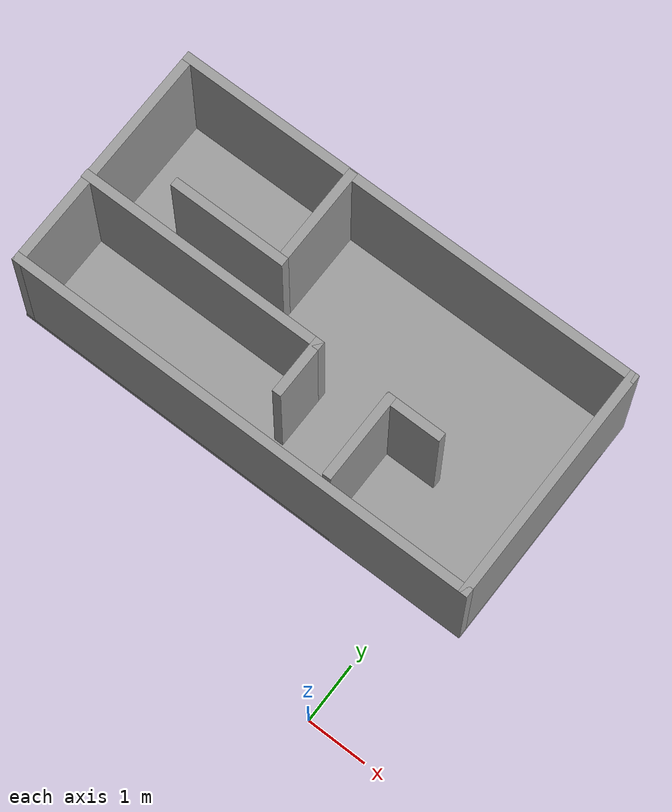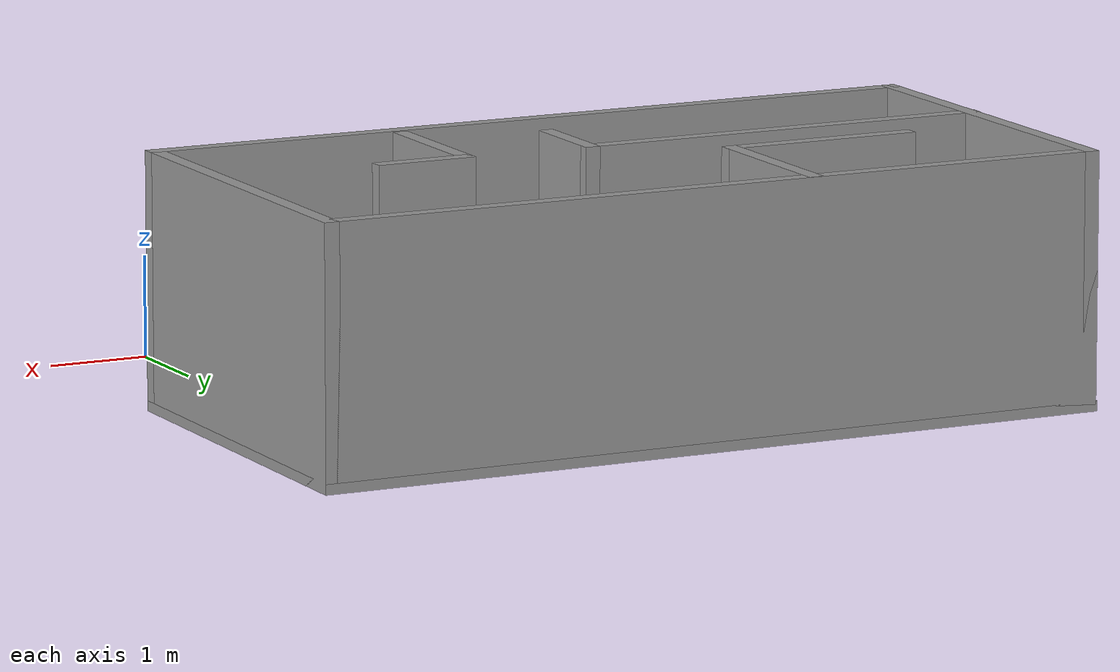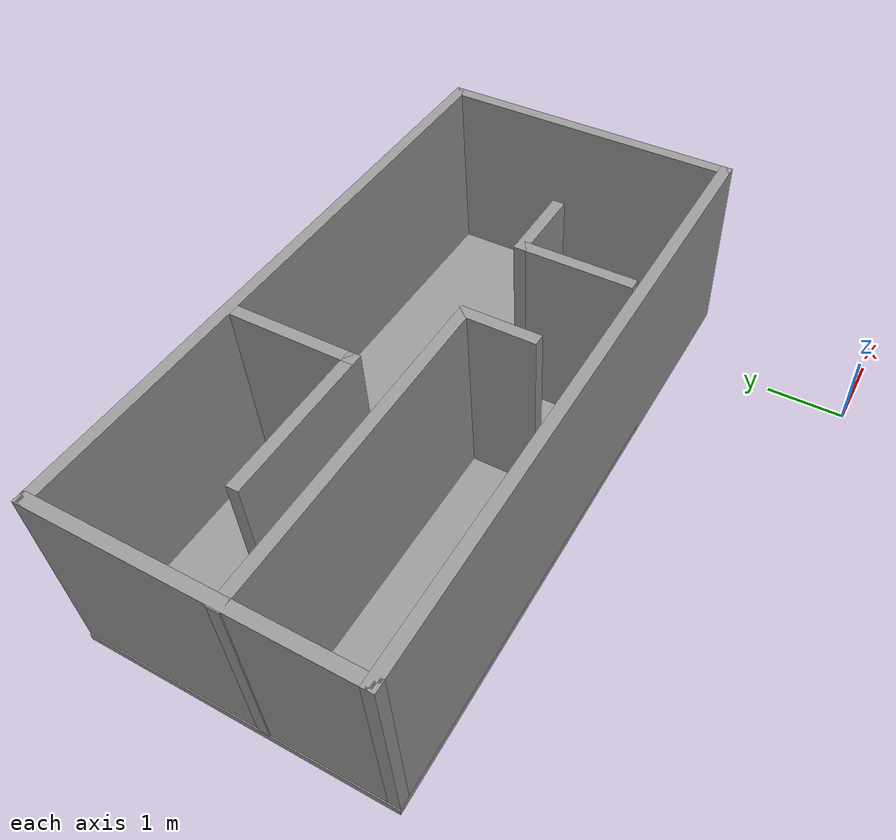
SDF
<?xml version='1.0'?>
<sdf version='1.7'>
  <model name='room'>
    <pose>-3.03342 3.13183 0 0 -0 0</pose>
    <link name='Floor_0'>
      <collision name='Floor_0_Collision'>
        <geometry>
          <box>
            <size>8.01323 4 0.1</size>
          </box>
        </geometry>
        <pose>0 0 0.05 0 -0 0</pose>
      </collision>
      <visual name='Floor_0_Visual'>
        <pose>0 0 0.05 0 -0 0</pose>
        <geometry>
          <box>
            <size>8.01323 4 0.1</size>
          </box>
        </geometry>
        <material>
          <script>
            <uri>file://media/materials/scripts/gazebo.material</uri>
            <name>Gazebo/Grey</name>
          </script>
          <ambient>1 1 1 1</ambient>
        </material>
        <meta>
          <layer>0</layer>
        </meta>
      </visual>
      <pose>0 1.13183 0 0 -0 0</pose>
    </link>
    <link name='Wall_11'>
      <collision name='Wall_11_Collision'>
        <geometry>
          <box>
            <size>1.75 0.15 2.5</size>
          </box>
        </geometry>
        <pose>0 0 1.25 0 -0 0</pose>
      </collision>
      <visual name='Wall_11_Visual'>
        <pose>0 0 1.25 0 -0 0</pose>
        <geometry>
          <box>
            <size>1.75 0.15 2.5</size>
          </box>
        </geometry>
        <material>
          <script>
            <uri>file://media/materials/scripts/gazebo.material</uri>
            <name>Gazebo/Grey</name>
          </script>
          <ambient>1 1 1 1</ambient>
        </material>
        <meta>
          <layer>0</layer>
        </meta>
      </visual>
      <pose>-0.995663 2.24361 0 0 -0 -1.5708</pose>
    </link>
    <link name='Wall_12'>
      <collision name='Wall_12_Collision'>
        <geometry>
          <box>
            <size>2 0.15 2.5</size>
          </box>
        </geometry>
        <pose>0 0 1.25 0 -0 0</pose>
      </collision>
      <visual name='Wall_12_Visual'>
        <pose>0 0 1.25 0 -0 0</pose>
        <geometry>
          <box>
            <size>2 0.15 2.5</size>
          </box>
        </geometry>
        <material>
          <script>
            <uri>file://media/materials/scripts/gazebo.material</uri>
            <name>Gazebo/Grey</name>
          </script>
          <ambient>1 1 1 1</ambient>
        </material>
        <meta>
          <layer>0</layer>
        </meta>
      </visual>
      <pose>-1.92066 1.44361 0 0 -0 3.14159</pose>
    </link>
    <link name='Wall_14'>
      <collision name='Wall_14_Collision'>
        <geometry>
          <box>
            <size>4.25 0.15 2.5</size>
          </box>
        </geometry>
        <pose>0 0 1.25 0 -0 0</pose>
      </collision>
      <visual name='Wall_14_Visual'>
        <pose>0 0 1.25 0 -0 0</pose>
        <geometry>
          <box>
            <size>4.25 0.15 2.5</size>
          </box>
        </geometry>
        <material>
          <script>
            <uri>file://media/materials/scripts/gazebo.material</uri>
            <name>Gazebo/Grey</name>
          </script>
          <ambient>1 1 1 1</ambient>
        </material>
        <meta>
          <layer>0</layer>
        </meta>
      </visual>
      <pose>-1.88161 0.768909 0 0 -0 0</pose>
    </link>
    <link name='Wall_15'>
      <collision name='Wall_15_Collision'>
        <geometry>
          <box>
            <size>1 0.15 2.5</size>
          </box>
        </geometry>
        <pose>0 0 1.25 0 -0 0</pose>
      </collision>
      <visual name='Wall_15_Visual'>
        <pose>0 0 1.25 0 -0 0</pose>
        <geometry>
          <box>
            <size>1 0.15 2.5</size>
          </box>
        </geometry>
        <material>
          <script>
            <uri>file://media/materials/scripts/gazebo.material</uri>
            <name>Gazebo/Grey</name>
          </script>
          <ambient>1 1 1 1</ambient>
        </material>
        <meta>
          <layer>0</layer>
        </meta>
      </visual>
      <pose>0.168387 0.343909 0 0 -0 -1.5708</pose>
    </link>
    <link name='Wall_17'>
      <collision name='Wall_17_Collision'>
        <geometry>
          <box>
            <size>1.5 0.15 2.5</size>
          </box>
        </geometry>
        <pose>0 0 1.25 0 -0 0</pose>
      </collision>
      <visual name='Wall_17_Visual'>
        <pose>0 0 1.25 0 -0 0</pose>
        <geometry>
          <box>
            <size>1.5 0.15 2.5</size>
          </box>
        </geometry>
        <material>
          <script>
            <uri>file://media/materials/scripts/gazebo.material</uri>
            <name>Gazebo/Grey</name>
          </script>
          <ambient>1 1 1 1</ambient>
        </material>
        <meta>
          <layer>0</layer>
        </meta>
      </visual>
      <pose>1.45096 0.067459 0 0 -0 -1.5708</pose>
    </link>
    <link name='Wall_19'>
      <collision name='Wall_19_Collision'>
        <geometry>
          <box>
            <size>1 0.15 2.5</size>
          </box>
        </geometry>
        <pose>0 0 1.25 0 -0 0</pose>
      </collision>
      <visual name='Wall_19_Visual'>
        <pose>0 0 1.25 0 -0 0</pose>
        <geometry>
          <box>
            <size>1 0.15 2.5</size>
          </box>
        </geometry>
        <material>
          <script>
            <uri>file://media/materials/scripts/gazebo.material</uri>
            <name>Gazebo/Grey</name>
          </script>
          <ambient>1 1 1 1</ambient>
        </material>
        <meta>
          <layer>0</layer>
        </meta>
      </visual>
      <pose>1.87596 0.742459 0 0 -0 0</pose>
    </link>
    <link name='Wall_6'>
      <collision name='Wall_6_Collision'>
        <geometry>
          <box>
            <size>8 0.15 2.5</size>
          </box>
        </geometry>
        <pose>0 0 1.25 0 -0 0</pose>
      </collision>
      <visual name='Wall_6_Visual'>
        <pose>0 0 1.25 0 -0 0</pose>
        <geometry>
          <box>
            <size>8 0.15 2.5</size>
          </box>
        </geometry>
        <material>
          <script>
            <uri>file://media/materials/scripts/gazebo.material</uri>
            <name>Gazebo/Grey</name>
          </script>
          <ambient>1 1 1 1</ambient>
        </material>
        <meta>
          <layer>0</layer>
        </meta>
      </visual>
      <pose>0.006612 3.05683 0 0 -0 0</pose>
    </link>
    <link name='Wall_7'>
      <collision name='Wall_7_Collision'>
        <geometry>
          <box>
            <size>4 0.15 2.5</size>
          </box>
        </geometry>
        <pose>0 0 1.25 0 -0 0</pose>
      </collision>
      <visual name='Wall_7_Visual'>
        <pose>0 0 1.25 0 -0 0</pose>
        <geometry>
          <box>
            <size>4 0.15 2.5</size>
          </box>
        </geometry>
        <material>
          <script>
            <uri>file://media/materials/scripts/gazebo.material</uri>
            <name>Gazebo/Grey</name>
          </script>
          <ambient>1 1 1 1</ambient>
        </material>
        <meta>
          <layer>0</layer>
        </meta>
      </visual>
      <pose>3.93161 1.13183 0 0 -0 -1.5708</pose>
    </link>
    <link name='Wall_8'>
      <collision name='Wall_8_Collision'>
        <geometry>
          <box>
            <size>8 0.15 2.5</size>
          </box>
        </geometry>
        <pose>0 0 1.25 0 -0 0</pose>
      </collision>
      <visual name='Wall_8_Visual'>
        <pose>0 0 1.25 0 -0 0</pose>
        <geometry>
          <box>
            <size>8 0.15 2.5</size>
          </box>
        </geometry>
        <material>
          <script>
            <uri>file://media/materials/scripts/gazebo.material</uri>
            <name>Gazebo/Grey</name>
          </script>
          <ambient>1 1 1 1</ambient>
        </material>
        <meta>
          <layer>0</layer>
        </meta>
      </visual>
      <pose>0.006612 -0.793166 0 0 -0 3.14159</pose>
    </link>
    <link name='Wall_9'>
      <collision name='Wall_9_Collision'>
        <geometry>
          <box>
            <size>4 0.15 2.5</size>
          </box>
        </geometry>
        <pose>0 0 1.25 0 -0 0</pose>
      </collision>
      <visual name='Wall_9_Visual'>
        <pose>0 0 1.25 0 -0 0</pose>
        <geometry>
          <box>
            <size>4 0.15 2.5</size>
          </box>
        </geometry>
        <material>
          <script>
            <uri>file://media/materials/scripts/gazebo.material</uri>
            <name>Gazebo/Grey</name>
          </script>
          <ambient>1 1 1 1</ambient>
        </material>
        <meta>
          <layer>0</layer>
        </meta>
      </visual>
      <pose>-3.91839 1.13183 0 0 -0 1.5708</pose>
    </link>
    <static>1</static>
  </model>
</sdf>
